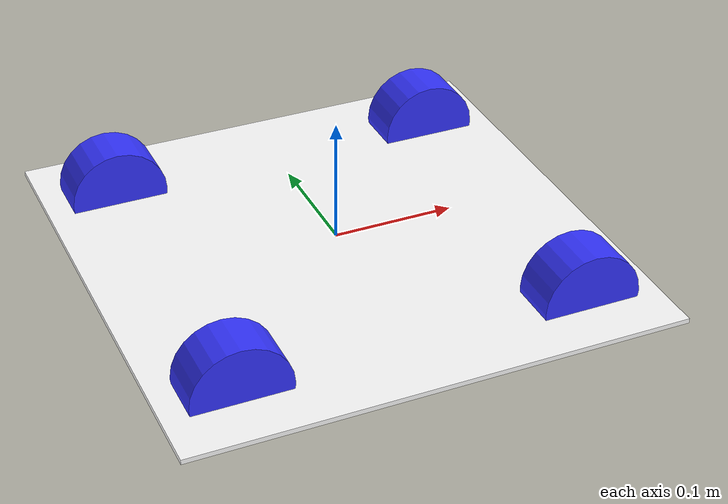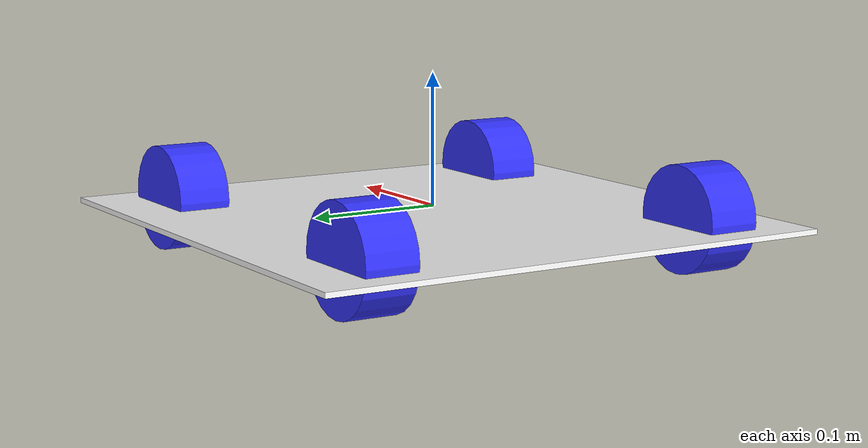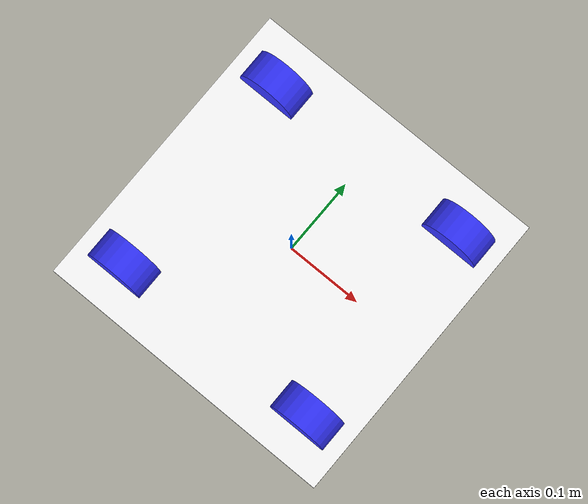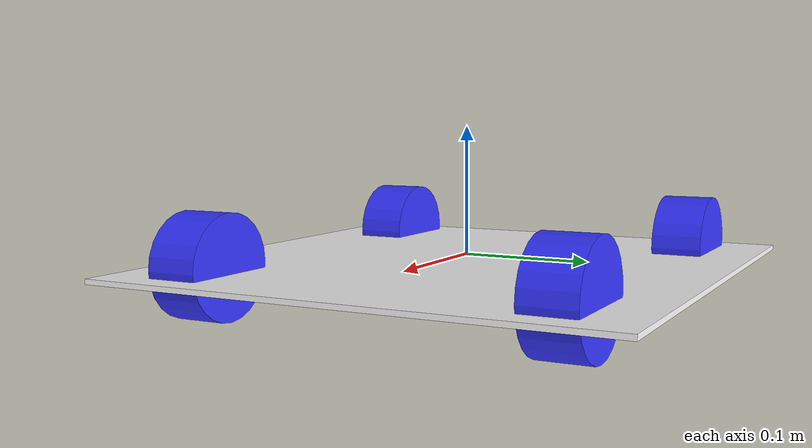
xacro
<?xml version="1.0"?>
<robot xmlns:xacro="http://www.ros.org/wiki/xacro" >

  <xacro:include filename="inertial_macros.xacro"/>

  <material name="white">
    <color rgba="1 1 1 1" />
  </material>

  <material name="orange">
    <color rgba="1 0.2 0.1 1" />
  </material>

  <material name="blue">
    <color rgba="0.2 0.2 1 1" />
  </material>

  <material name="black">
   <color rgba="0 0 0 1" />
  </material>

  <link name="base_link">
  </link>

  <joint name="chassis_joint" type="fixed">
    <parent link="base_link"/>
    <child link="chassis"/>
    <origin xyz="0 0 -0.007"/>
  </joint>

  <link name="chassis">
    <visual>
      <origin xyz="0 0 0"/>
      <geometry>
        <box size="0.40 0.40 0.004"/>
      </geometry>
      <material name="white"/>
    </visual>
    <collision>
      <origin xyz="0 0 0"/>
      <geometry>
        <box size="0.42 0.42 0.0045"/>
      </geometry>
    </collision>
    <xacro:inertial_box mass="0.5" x="0.4" y="0.4" z="0.004" >
      <origin xyz="0 0 0" rpy="0 0 0"/>
    </xacro:inertial_box>
  </link>

  <joint name="right_front_wheel_joint" type="continuous">
    <parent link="base_link"/>
    <child link="right_front_wheel"/>
    <origin xyz="0.14 -0.14 0" rpy="-${pi/2} 0 0"/>
    <axis xyz="0 0 0.1"/>
  </joint>

  <link name="right_front_wheel">
    <visual>
      <origin xyz="0 0 0"/>
      <geometry>
        <cylinder radius="0.04" length="0.04"/>
      </geometry>
      <material name="blue"/>
    </visual>
    <collision>
      <origin xyz="0 0 0"/>
      <geometry>
        <cylinder radius="0.044" length="0.044"/>
      </geometry>
    </collision>
    <xacro:inertial_cylinder mass="0.1" length="0.4" radius="0.4">
      <origin xyz="0 0 0" rpy="0 0 0"/>
    </xacro:inertial_cylinder>
  </link>

  <joint name="left_front_wheel_joint" type="continuous">
    <parent link="base_link"/>
    <child link="left_front_wheel"/>
    <origin xyz="0.14 0.14 0" rpy="${pi/2} 0 0"/>
    <axis xyz="0 0 0.1"/>
  </joint>

  <link name="left_front_wheel">
    <visual>
      <origin xyz="0 0 0"/>
      <geometry>
        <cylinder radius="0.04" length="0.04"/>
      </geometry>
      <material name="blue"/>
    </visual>
    <collision>
      <origin xyz="0 0 0"/>
      <geometry>
        <cylinder radius="0.044" length="0.044"/>
      </geometry>
    </collision>
    <xacro:inertial_cylinder mass="0.1" length="0.4" radius="0.4">
      <origin xyz="0 0 0" rpy="0 0 0"/>
    </xacro:inertial_cylinder>
  </link>

    <joint name="right_back_wheel_joint" type="continuous">
    <parent link="base_link"/>
    <child link="right_back_wheel"/>
    <origin xyz="-0.14 -0.14 0" rpy="-${pi/2} 0 0"/>
    <axis xyz="0 0 0.1"/>
  </joint>

  <link name="right_back_wheel">
    <visual>
      <origin xyz="0 0 0"/>
      <geometry>
        <cylinder radius="0.04" length="0.04"/>
      </geometry>
      <material name="blue"/>
    </visual>
    <collision>
      <origin xyz="0 0 0"/>
      <geometry>
        <cylinder radius="0.044" length="0.044"/>
      </geometry>
    </collision>
    <xacro:inertial_cylinder mass="0.1" length="0.4" radius="0.4">
      <origin xyz="0 0 0" rpy="0 0 0"/>
    </xacro:inertial_cylinder>
  </link>

  <joint name="left_back_wheel_joint" type="continuous">
    <parent link="base_link"/>
    <child link="left_back_wheel"/>
    <origin xyz="-0.14 0.14 0" rpy="${pi/2} 0 0"/>
    <axis xyz="0 0 0.1"/>
  </joint>

  <link name="left_back_wheel">
    <visual>
      <origin xyz="0 0 0"/>
      <geometry>
        <cylinder radius="0.04" length="0.04"/>
      </geometry>
      <material name="blue"/>
    </visual>
    <collision>
      <origin xyz="0 0 0"/>
      <geometry>
        <cylinder radius="0.044" length="0.044"/>
      </geometry>
    </collision>
    <xacro:inertial_cylinder mass="0.1" length="0.4" radius="0.4">
      <origin xyz="0 0 0" rpy="0 0 0"/>
    </xacro:inertial_cylinder>
  </link>

</robot>
